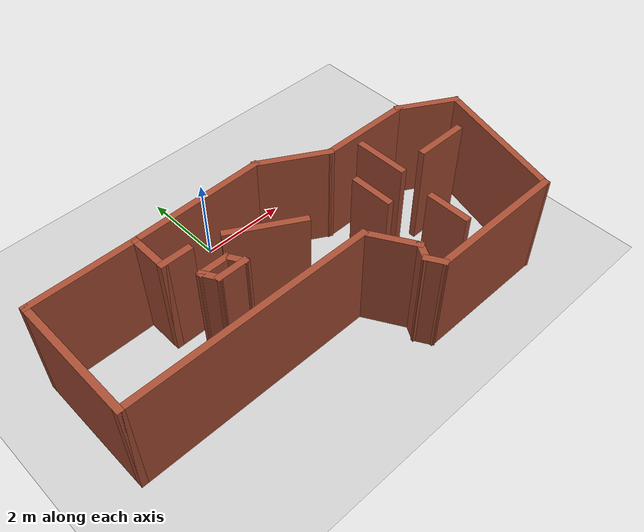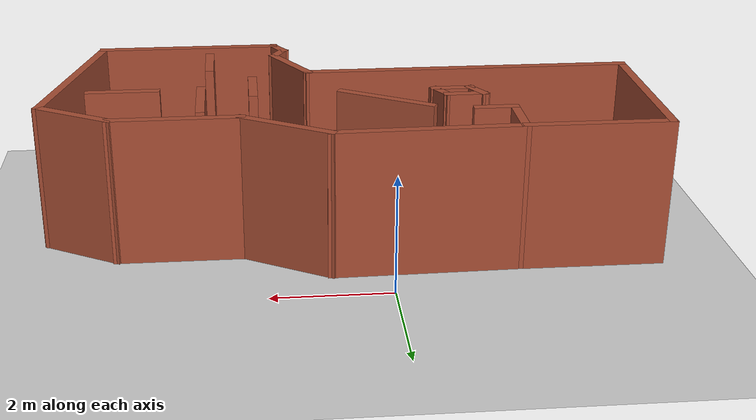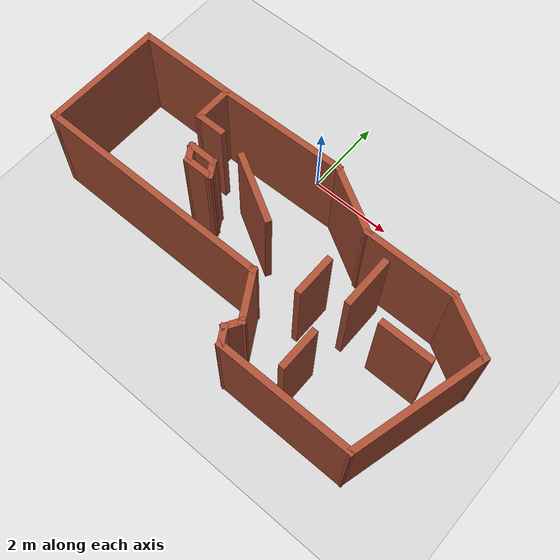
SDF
<sdf version="1.7">
 <world name="default">
  <light name="sun" type="directional">
   <pose>0 0 10 0 -0 0</pose>
   <diffuse>0.8 0.8 0.8 1</diffuse>
   <specular>0.2 0.2 0.2 1</specular>
   <attenuation>
    <range>1000</range>
    <constant>0.9</constant>
    <linear>0.01</linear>
    <quadratic>0.001</quadratic>
   </attenuation>
   <direction>-0.5 0.1 -0.9</direction>
   <spot><inner_angle>0</inner_angle><outer_angle>0</outer_angle><falloff>0</falloff></spot>
  </light>
  <model name="ground_plane">
   <static>1</static>
   <link name="link">
    <collision name="collision">
     <geometry><plane><normal>0 0 1</normal><size>100 100</size></plane></geometry>
     <surface>
      <contact><collide_bitmask>65535</collide_bitmask></contact>
      <friction><ode><mu>100</mu><mu2>50</mu2></ode></friction>
     </surface>
    </collision>
    <visual name="visual">
     <cast_shadows>0</cast_shadows>
     <geometry><plane><normal>0 0 1</normal><size>100 100</size></plane></geometry>
     <material>
      <script><uri>file://media/materials/scripts/gazebo.material</uri><name>Gazebo/Grey</name></script>
     </material>
    </visual>
   </link>
  </model>
  <gravity>0 0 -9.8</gravity>
  <magnetic_field>6e-06 2.3e-05 -4.2e-05</magnetic_field>
  <atmosphere type="adiabatic"/>
  <physics type="ode">
   <max_step_size>0.001</max_step_size>
   <real_time_factor>1</real_time_factor>
   <real_time_update_rate>1000</real_time_update_rate>
  </physics>
  <scene><ambient>0.4 0.4 0.4 1</ambient><background>0.7 0.7 0.7 1</background><shadows>1</shadows></scene>
  <audio><device>default</device></audio>
  <spherical_coordinates>
   <surface_model>EARTH_WGS84</surface_model>
   <latitude_deg>0</latitude_deg>
   <longitude_deg>0</longitude_deg>
   <elevation>0</elevation>
   <heading_deg>0</heading_deg>
  </spherical_coordinates>
  <model name="maz1">
   <pose>0.589895 -2.62065 0 0 -0 0</pose>
   <link name="Wall_0">
    <collision name="Wall_0_Collision">
     <geometry><box><size>2.5 0.15 2.5</size></box></geometry>
     <pose>0 0 1.25 0 -0 0</pose>
    </collision>
    <visual name="Wall_0_Visual">
     <pose>0 0 1.25 0 -0 0</pose>
     <geometry><box><size>2.5 0.15 2.5</size></box></geometry>
     <material>
      <script><uri>file://media/materials/scripts/gazebo.material</uri><name>Gazebo/Bricks</name></script>
      <ambient>1 1 1 1</ambient>
     </material>
     <meta><layer>0</layer></meta>
    </visual>
    <pose>-3.8649 1.89065 0 0 -0 3.14159</pose>
   </link>
   <link name="Wall_1">
    <collision name="Wall_1_Collision">
     <geometry><box><size>3 0.15 2.5</size></box></geometry>
     <pose>0 0 1.25 0 -0 0</pose>
    </collision>
    <visual name="Wall_1_Visual">
     <pose>0 0 1.25 0 -0 0</pose>
     <geometry><box><size>3 0.15 2.5</size></box></geometry>
     <material>
      <script><uri>file://media/materials/scripts/gazebo.material</uri><name>Gazebo/Bricks</name></script>
      <ambient>1 1 1 1</ambient>
     </material>
     <meta><layer>0</layer></meta>
    </visual>
    <pose>-5.03989 0.465649 0 0 -0 -1.5708</pose>
   </link>
   <link name="Wall_10">
    <collision name="Wall_10_Collision">
     <geometry><box><size>1.75 0.15 2.5</size></box></geometry>
     <pose>0 0 1.25 0 -0 0</pose>
    </collision>
    <visual name="Wall_10_Visual">
     <pose>0 0 1.25 0 -0 0</pose>
     <geometry><box><size>1.75 0.15 2.5</size></box></geometry>
     <material>
      <script><uri>file://media/materials/scripts/gazebo.material</uri><name>Gazebo/Bricks</name></script>
      <ambient>1 1 1 1</ambient>
     </material>
     <meta><layer>0</layer></meta>
    </visual>
    <pose>1.05049 1.55117 0 0 -0 2.61799</pose>
   </link>
   <link name="Wall_11">
    <collision name="Wall_11_Collision">
     <geometry><box><size>3.19816 0.15 2.5</size></box></geometry>
     <pose>0 0 1.25 0 -0 0</pose>
    </collision>
    <visual name="Wall_11_Visual">
     <pose>0 0 1.25 0 -0 0</pose>
     <geometry><box><size>3.19816 0.15 2.5</size></box></geometry>
     <material>
      <script><uri>file://media/materials/scripts/gazebo.material</uri><name>Gazebo/Bricks</name></script>
      <ambient>1 1 1 1</ambient>
     </material>
     <meta><layer>0</layer></meta>
    </visual>
    <pose>-1.16611 1.92091 0 0 -0 -3.12174</pose>
   </link>
   <link name="Wall_12">
    <collision name="Wall_12_Collision">
     <geometry><box><size>1 0.15 2.5</size></box></geometry>
     <pose>0 0 1.25 0 -0 0</pose>
    </collision>
    <visual name="Wall_12_Visual">
     <pose>0 0 1.25 0 -0 0</pose>
     <geometry><box><size>1 0.15 2.5</size></box></geometry>
     <material>
      <script><uri>file://media/materials/scripts/gazebo.material</uri><name>Gazebo/Bricks</name></script>
      <ambient>1 1 1 1</ambient>
     </material>
     <meta><layer>0</layer></meta>
    </visual>
    <pose>-2.68989 1.46565 0 0 -0 -1.5708</pose>
   </link>
   <link name="Wall_13">
    <collision name="Wall_13_Collision">
     <geometry><box><size>0.75 0.15 2.5</size></box></geometry>
     <pose>0 0 1.25 0 -0 0</pose>
    </collision>
    <visual name="Wall_13_Visual">
     <pose>0 0 1.25 0 -0 0</pose>
     <geometry><box><size>0.75 0.15 2.5</size></box></geometry>
     <material>
      <script><uri>file://media/materials/scripts/gazebo.material</uri><name>Gazebo/Bricks</name></script>
      <ambient>1 1 1 1</ambient>
     </material>
     <meta><layer>0</layer></meta>
    </visual>
    <pose>-2.3899 1.04065 0 0 -0 0</pose>
   </link>
   <link name="Wall_15">
    <collision name="Wall_15_Collision">
     <geometry><box><size>0.75 0.15 2.5</size></box></geometry>
     <pose>0 0 1.25 0 -0 0</pose>
    </collision>
    <visual name="Wall_15_Visual">
     <pose>0 0 1.25 0 -0 0</pose>
     <geometry><box><size>0.75 0.15 2.5</size></box></geometry>
     <material>
      <script><uri>file://media/materials/scripts/gazebo.material</uri><name>Gazebo/Bricks</name></script>
      <ambient>1 1 1 1</ambient>
     </material>
     <meta><layer>0</layer></meta>
    </visual>
    <pose>-1.8299 0.070649 0 0 -0 0</pose>
   </link>
   <link name="Wall_16">
    <collision name="Wall_16_Collision">
     <geometry><box><size>0.5 0.15 2.5</size></box></geometry>
     <pose>0 0 1.25 0 -0 0</pose>
    </collision>
    <visual name="Wall_16_Visual">
     <pose>0 0 1.25 0 -0 0</pose>
     <geometry><box><size>0.5 0.15 2.5</size></box></geometry>
     <material>
      <script><uri>file://media/materials/scripts/gazebo.material</uri><name>Gazebo/Bricks</name></script>
      <ambient>1 1 1 1</ambient>
     </material>
     <meta><layer>0</layer></meta>
    </visual>
    <pose>-1.6174 0.222203 0 0 -0 2.0944</pose>
   </link>
   <link name="Wall_17">
    <collision name="Wall_17_Collision">
     <geometry><box><size>0.75 0.15 2.5</size></box></geometry>
     <pose>0 0 1.25 0 -0 0</pose>
    </collision>
    <visual name="Wall_17_Visual">
     <pose>0 0 1.25 0 -0 0</pose>
     <geometry><box><size>0.75 0.15 2.5</size></box></geometry>
     <material>
      <script><uri>file://media/materials/scripts/gazebo.material</uri><name>Gazebo/Bricks</name></script>
      <ambient>1 1 1 1</ambient>
     </material>
     <meta><layer>0</layer></meta>
    </visual>
    <pose>-2.00489 0.373758 0 0 -0 3.14159</pose>
   </link>
   <link name="Wall_18">
    <collision name="Wall_18_Collision">
     <geometry><box><size>0.5 0.15 2.5</size></box></geometry>
     <pose>0 0 1.25 0 -0 0</pose>
    </collision>
    <visual name="Wall_18_Visual">
     <pose>0 0 1.25 0 -0 0</pose>
     <geometry><box><size>0.5 0.15 2.5</size></box></geometry>
     <material>
      <script><uri>file://media/materials/scripts/gazebo.material</uri><name>Gazebo/Bricks</name></script>
      <ambient>1 1 1 1</ambient>
     </material>
     <meta><layer>0</layer></meta>
    </visual>
    <pose>-2.2174 0.222203 0 0 -0 -1.0472</pose>
   </link>
   <link name="Wall_2">
    <collision name="Wall_2_Collision">
     <geometry><box><size>5.75 0.15 2.5</size></box></geometry>
     <pose>0 0 1.25 0 -0 0</pose>
    </collision>
    <visual name="Wall_2_Visual">
     <pose>0 0 1.25 0 -0 0</pose>
     <geometry><box><size>5.75 0.15 2.5</size></box></geometry>
     <material>
      <script><uri>file://media/materials/scripts/gazebo.material</uri><name>Gazebo/Bricks</name></script>
      <ambient>1 1 1 1</ambient>
     </material>
     <meta><layer>0</layer></meta>
    </visual>
    <pose>-2.2399 -0.959351 0 0 -0 0</pose>
   </link>
   <link name="Wall_20">
    <collision name="Wall_20_Collision">
     <geometry><box><size>1 0.15 2.5</size></box></geometry>
     <pose>0 0 1.25 0 -0 0</pose>
    </collision>
    <visual name="Wall_20_Visual">
     <pose>0 0 1.25 0 -0 0</pose>
     <geometry><box><size>1 0.15 2.5</size></box></geometry>
     <material>
      <script><uri>file://media/materials/scripts/gazebo.material</uri><name>Gazebo/Bricks</name></script>
      <ambient>1 1 1 1</ambient>
     </material>
     <meta><layer>0</layer></meta>
    </visual>
    <pose>1.5301 -0.274351 0 0 -0 -1.5708</pose>
   </link>
   <link name="Wall_22">
    <collision name="Wall_22_Collision">
     <geometry><box><size>1.25 0.15 2.5</size></box></geometry>
     <pose>0 0 1.25 0 -0 0</pose>
    </collision>
    <visual name="Wall_22_Visual">
     <pose>0 0 1.25 0 -0 0</pose>
     <geometry><box><size>1.25 0.15 2.5</size></box></geometry>
     <material>
      <script><uri>file://media/materials/scripts/gazebo.material</uri><name>Gazebo/Bricks</name></script>
      <ambient>1 1 1 1</ambient>
     </material>
     <meta><layer>0</layer></meta>
    </visual>
    <pose>2.4001 0.290649 0 0 -0 -1.5708</pose>
   </link>
   <link name="Wall_24">
    <collision name="Wall_24_Collision">
     <geometry><box><size>1 0.15 2.5</size></box></geometry>
     <pose>0 0 1.25 0 -0 0</pose>
    </collision>
    <visual name="Wall_24_Visual">
     <pose>0 0 1.25 0 -0 0</pose>
     <geometry><box><size>1 0.15 2.5</size></box></geometry>
     <material>
      <script><uri>file://media/materials/scripts/gazebo.material</uri><name>Gazebo/Bricks</name></script>
      <ambient>1 1 1 1</ambient>
     </material>
     <meta><layer>0</layer></meta>
    </visual>
    <pose>2.2701 -1.63435 0 0 -0 1.5708</pose>
   </link>
   <link name="Wall_26">
    <collision name="Wall_26_Collision">
     <geometry><box><size>1.25 0.15 2.5</size></box></geometry>
     <pose>0 0 1.25 0 -0 0</pose>
    </collision>
    <visual name="Wall_26_Visual">
     <pose>0 0 1.25 0 -0 0</pose>
     <geometry><box><size>1.25 0.15 2.5</size></box></geometry>
     <material>
      <script><uri>file://media/materials/scripts/gazebo.material</uri><name>Gazebo/Bricks</name></script>
      <ambient>1 1 1 1</ambient>
     </material>
     <meta><layer>0</layer></meta>
    </visual>
    <pose>3.7101 -0.199351 0 0 -0 0</pose>
   </link>
   <link name="Wall_28">
    <collision name="Wall_28_Collision">
     <geometry><box><size>1.75 0.15 2.5</size></box></geometry>
     <pose>0 0 1.25 0 -0 0</pose>
    </collision>
    <visual name="Wall_28_Visual">
     <pose>0 0 1.25 0 -0 0</pose>
     <geometry><box><size>1.75 0.15 2.5</size></box></geometry>
     <material>
      <script><uri>file://media/materials/scripts/gazebo.material</uri><name>Gazebo/Bricks</name></script>
      <ambient>1 1 1 1</ambient>
     </material>
     <meta><layer>0</layer></meta>
    </visual>
    <pose>-0.657075 0.470649 0 0 -0 -0.523599</pose>
   </link>
   <link name="Wall_3">
    <collision name="Wall_3_Collision">
     <geometry><box><size>1.25 0.15 2.5</size></box></geometry>
     <pose>0 0 1.25 0 -0 0</pose>
    </collision>
    <visual name="Wall_3_Visual">
     <pose>0 0 1.25 0 -0 0</pose>
     <geometry><box><size>1.25 0.15 2.5</size></box></geometry>
     <material>
      <script><uri>file://media/materials/scripts/gazebo.material</uri><name>Gazebo/Bricks</name></script>
      <ambient>1 1 1 1</ambient>
     </material>
     <meta><layer>0</layer></meta>
    </visual>
    <pose>0.835104 -1.43566 0 0 -0 -1.0472</pose>
   </link>
   <link name="Wall_4">
    <collision name="Wall_4_Collision">
     <geometry><box><size>0.5 0.15 2.5</size></box></geometry>
     <pose>0 0 1.25 0 -0 0</pose>
    </collision>
    <visual name="Wall_4_Visual">
     <pose>0 0 1.25 0 -0 0</pose>
     <geometry><box><size>0.5 0.15 2.5</size></box></geometry>
     <material>
      <script><uri>file://media/materials/scripts/gazebo.material</uri><name>Gazebo/Bricks</name></script>
      <ambient>1 1 1 1</ambient>
     </material>
     <meta><layer>0</layer></meta>
    </visual>
    <pose>1.0226 -2.06353 0 0 -0 -2.0944</pose>
   </link>
   <link name="Wall_5">
    <collision name="Wall_5_Collision">
     <geometry><box><size>0.5 0.15 2.5</size></box></geometry>
     <pose>0 0 1.25 0 -0 0</pose>
    </collision>
    <visual name="Wall_5_Visual">
     <pose>0 0 1.25 0 -0 0</pose>
     <geometry><box><size>0.5 0.15 2.5</size></box></geometry>
     <material>
      <script><uri>file://media/materials/scripts/gazebo.material</uri><name>Gazebo/Bricks</name></script>
      <ambient>1 1 1 1</ambient>
     </material>
     <meta><layer>0</layer></meta>
    </visual>
    <pose>1.0226 -2.36664 0 0 -0 -1.0472</pose>
   </link>
   <link name="Wall_6">
    <collision name="Wall_6_Collision">
     <geometry><box><size>3.25 0.15 2.5</size></box></geometry>
     <pose>0 0 1.25 0 -0 0</pose>
    </collision>
    <visual name="Wall_6_Visual">
     <pose>0 0 1.25 0 -0 0</pose>
     <geometry><box><size>3.25 0.15 2.5</size></box></geometry>
     <material>
      <script><uri>file://media/materials/scripts/gazebo.material</uri><name>Gazebo/Bricks</name></script>
      <ambient>1 1 1 1</ambient>
     </material>
     <meta><layer>0</layer></meta>
    </visual>
    <pose>2.66011 -2.5182 0 0 -0 0</pose>
   </link>
   <link name="Wall_7">
    <collision name="Wall_7_Collision">
     <geometry><box><size>3.25 0.15 2.5</size></box></geometry>
     <pose>0 0 1.25 0 -0 0</pose>
    </collision>
    <visual name="Wall_7_Visual">
     <pose>0 0 1.25 0 -0 0</pose>
     <geometry><box><size>3.25 0.15 2.5</size></box></geometry>
     <material>
      <script><uri>file://media/materials/scripts/gazebo.material</uri><name>Gazebo/Bricks</name></script>
      <ambient>1 1 1 1</ambient>
     </material>
     <meta><layer>0</layer></meta>
    </visual>
    <pose>4.61127 -1.02101 0 0 -0 1.309</pose>
   </link>
   <link name="Wall_8">
    <collision name="Wall_8_Collision">
     <geometry><box><size>1.5 0.15 2.5</size></box></geometry>
     <pose>0 0 1.25 0 -0 0</pose>
    </collision>
    <visual name="Wall_8_Visual">
     <pose>0 0 1.25 0 -0 0</pose>
     <geometry><box><size>1.5 0.15 2.5</size></box></geometry>
     <material>
      <script><uri>file://media/materials/scripts/gazebo.material</uri><name>Gazebo/Bricks</name></script>
      <ambient>1 1 1 1</ambient>
     </material>
     <meta><layer>0</layer></meta>
    </visual>
    <pose>4.42788 0.813673 0 0 -0 2.61799</pose>
   </link>
   <link name="Wall_9">
    <collision name="Wall_9_Collision">
     <geometry><box><size>2.25 0.15 2.5</size></box></geometry>
     <pose>0 0 1.25 0 -0 0</pose>
    </collision>
    <visual name="Wall_9_Visual">
     <pose>0 0 1.25 0 -0 0</pose>
     <geometry><box><size>2.25 0.15 2.5</size></box></geometry>
     <material>
      <script><uri>file://media/materials/scripts/gazebo.material</uri><name>Gazebo/Bricks</name></script>
      <ambient>1 1 1 1</ambient>
     </material>
     <meta><layer>0</layer></meta>
    </visual>
    <pose>2.79331 1.15117 0 0 -0 3.14159</pose>
   </link>
   <static>1</static>
  </model>
 </world>
</sdf>
